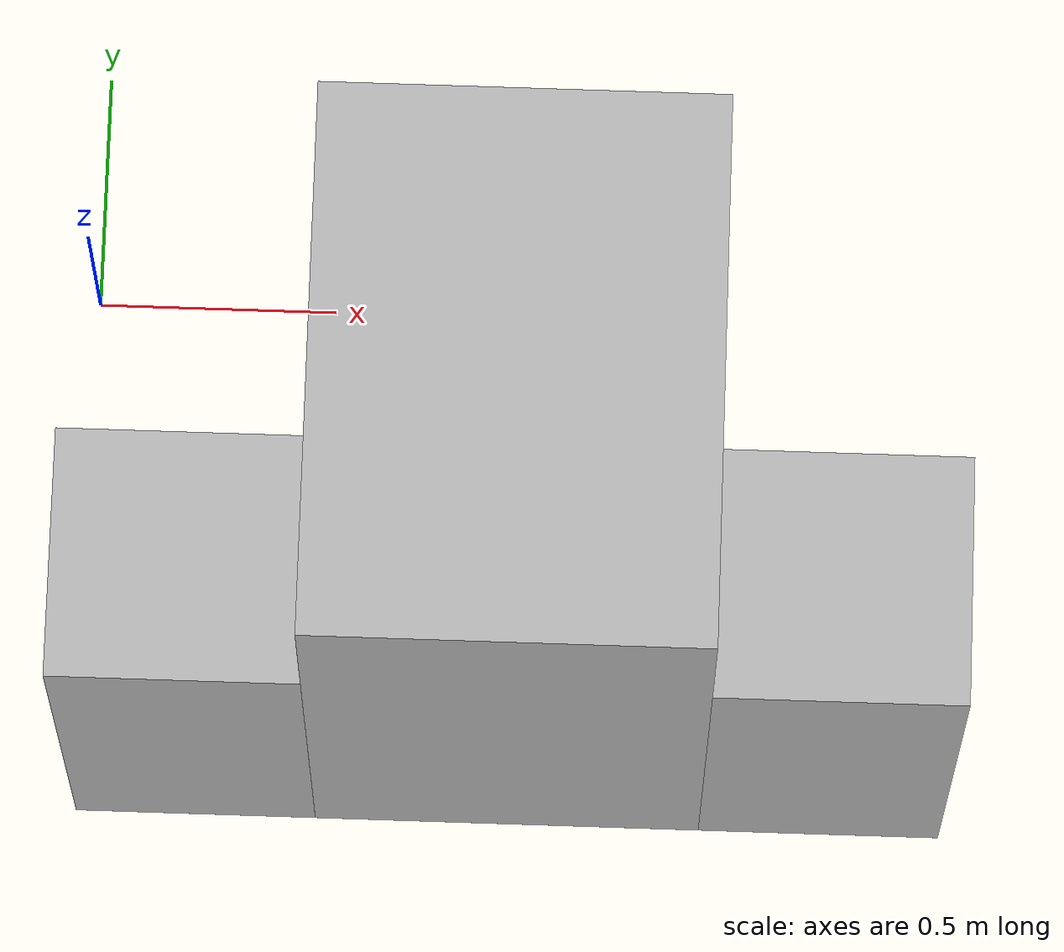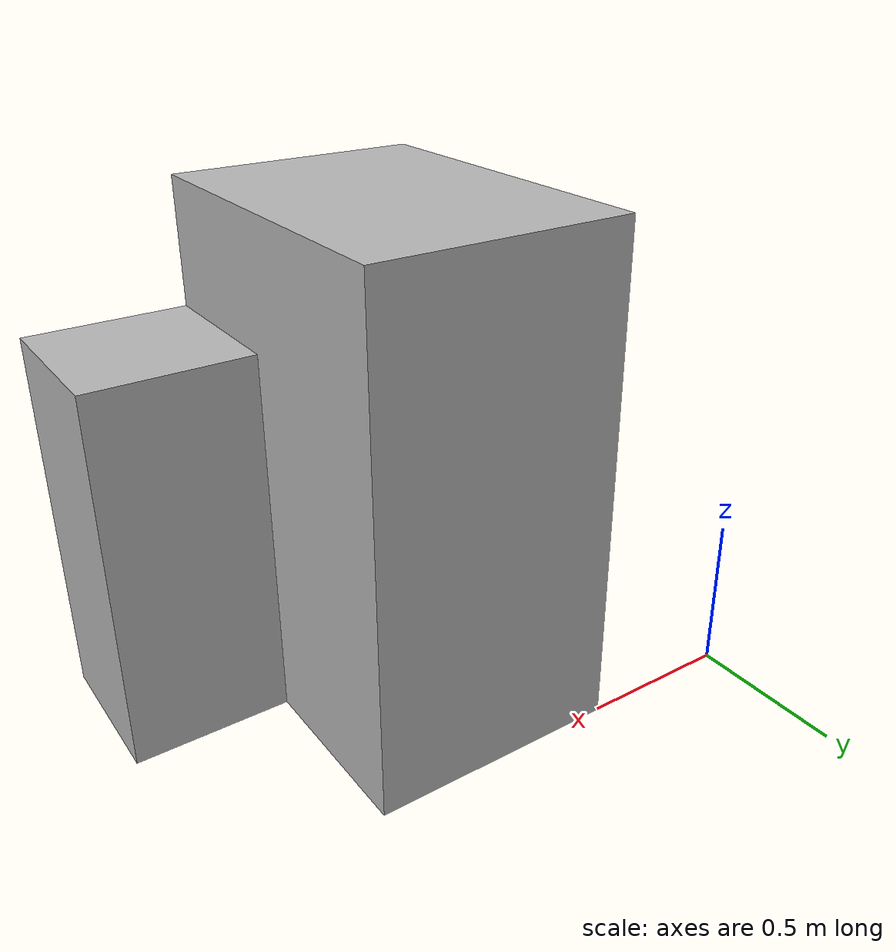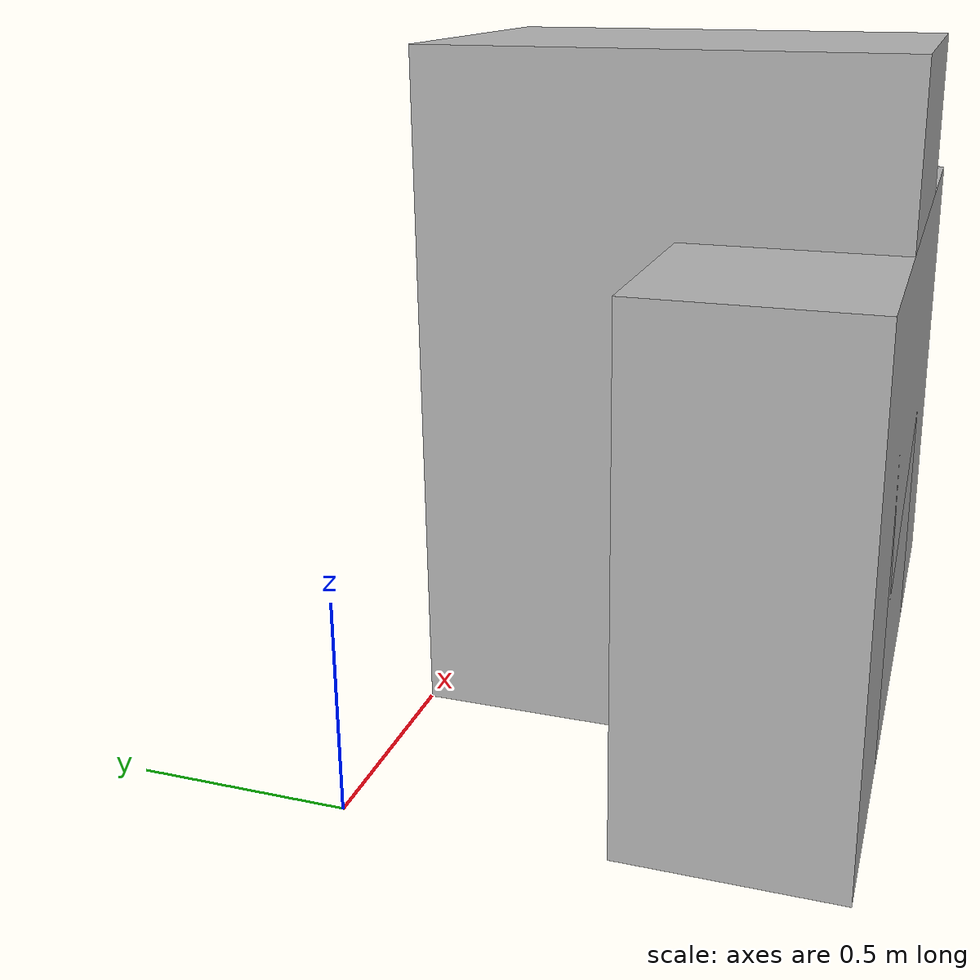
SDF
<?xml version="1.0"?>
<sdf version="1.6">
  <model name="obstacle_04">
    <static>true</static>

    <link name="link_04_1">
      <pose frame=''>0.9 -0.85 0.60 0 -0 0</pose>
      <collision name="body_collision">
        <geometry>
          <box>
            <size>1.80 0.50 1.20</size>
          </box>
        </geometry>
      </collision>

      <visual name="visual_04_1">
	<pose frame=''>0 0 0 0 -0 0</pose>
        <geometry>
          <box>
            <size>1.80 0.50 1.20</size>
          </box>
	</geometry>

	    <material>
		<script>
			<uri>model://obstacle_04/materials/scripts</uri>
			<uri>model://obstacle_04/materials/textures</uri>
			<name>repeated_04</name>
		</script>
	    </material>

      </visual>

    </link>

    <link name="link_04_2">
      <pose frame=''>0.90 -0.55 0.80 0 -0 0</pose>
      <collision name="body_collision">
        <geometry>
          <box>
            <size>0.80 1.10 1.60</size>
          </box>
        </geometry>
      </collision>

      <visual name="visual_04_2">
	<pose frame=''>0 0 0 0 -0 0</pose>
        <geometry>
          <box>
            <size>0.80 1.10 1.60</size>
          </box>
	</geometry>

	    <material>
		<script>
			<uri>model://obstacle_04/materials/scripts</uri>
			<uri>model://obstacle_04/materials/textures</uri>
			<name>repeated_04</name>
		</script>
	    </material>

      </visual>

    </link>

  </model>
</sdf>
